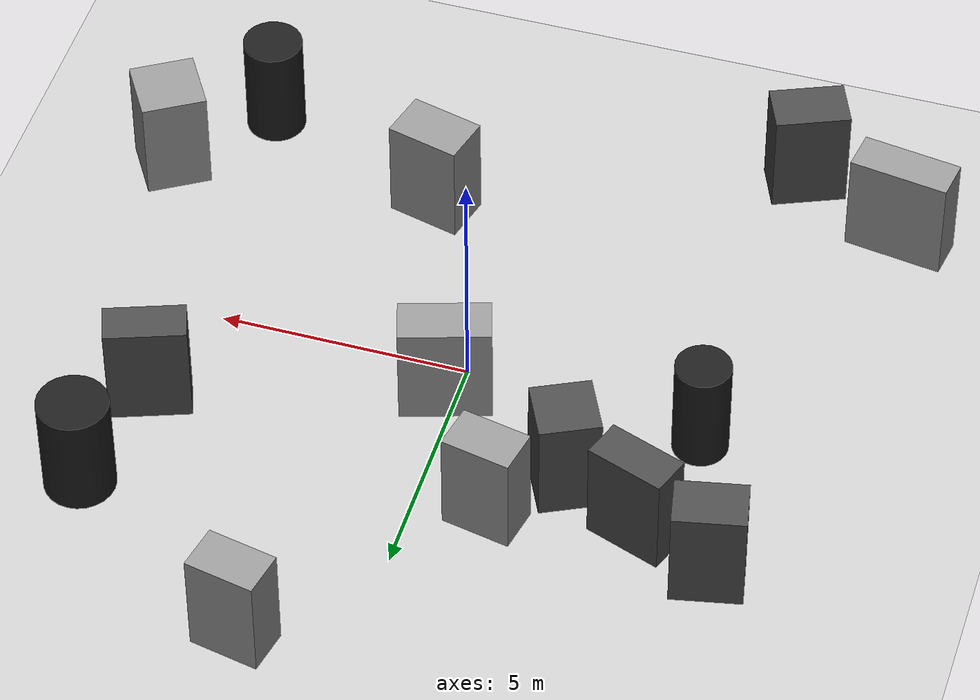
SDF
<sdf version="1.7">
 <world name="dyn_sta_world">
  <light name="sun" type="directional">
   <pose>0 0 10 0 -0 0</pose>
   <diffuse>0.8 0.8 0.8 1</diffuse>
   <specular>0.2 0.2 0.2 1</specular>
   <attenuation>
    <range>1000</range>
    <constant>0.9</constant>
    <linear>0.01</linear>
    <quadratic>0.001</quadratic>
   </attenuation>
   <direction>-0.5 0.1 -0.9</direction>
   <spot><inner_angle>0</inner_angle><outer_angle>0</outer_angle><falloff>0</falloff></spot>
  </light>
  <model name="ground_plane">
   <static>1</static>
   <link name="link">
    <collision name="collision">
     <geometry><plane><normal>0 0 1</normal><size>20 20</size></plane></geometry>
     <surface><friction><ode><mu>100</mu><mu2>50</mu2></ode></friction></surface>
    </collision>
    <visual name="visual">
     <cast_shadows>0</cast_shadows>
     <geometry><plane><normal>0 0 1</normal><size>20 20</size></plane></geometry>
     <material>
      <script><uri>file://media/materials/scripts/gazebo.material</uri><name>Gazebo/Grey</name></script>
     </material>
    </visual>
   </link>
  </model>
  <gravity>0 0 -9.8</gravity>
  <magnetic_field>6e-06 2.3e-05 -4.2e-05</magnetic_field>
  <atmosphere type="adiabatic"/>
  <physics name="default_physics" default="0" type="ode">
   <max_step_size>0.001</max_step_size>
   <real_time_factor>1</real_time_factor>
   <real_time_update_rate>1000</real_time_update_rate>
  </physics>
  <scene><ambient>0.4 0.4 0.4 1</ambient><background>0.7 0.7 0.7 1</background><shadows>1</shadows></scene>
  <spherical_coordinates>
   <surface_model>EARTH_WGS84</surface_model>
   <latitude_deg>0</latitude_deg>
   <longitude_deg>0</longitude_deg>
   <elevation>0</elevation>
   <heading_deg>0</heading_deg>
  </spherical_coordinates>
  <model name="obs_dense_0">
   <static>1</static>
   <pose>-5.8 3.8 0 0 -0 0.2</pose>
   <link name="link">
    <collision name="collision">
     <geometry><box><size>1.4 1 2.2</size></box></geometry>
     <pose>0 0 1.1 0 -0 0</pose>
    </collision>
    <visual name="visual">
     <geometry><box><size>1.4 1 2.2</size></box></geometry>
     <pose>0 0 1.1 0 -0 0</pose>
     <material>
      <script><uri>file://media/materials/scripts/gazebo.material</uri><name>Gazebo/DarkGrey</name></script>
     </material>
    </visual>
   </link>
  </model>
  <model name="obs_dense_1">
   <static>1</static>
   <pose>-4.2 3.1 0 0 0 -0.35</pose>
   <link name="link">
    <collision name="collision">
     <geometry><box><size>1.6 0.8 2.2</size></box></geometry>
     <pose>0 0 1.1 0 -0 0</pose>
    </collision>
    <visual name="visual">
     <geometry><box><size>1.6 0.8 2.2</size></box></geometry>
     <pose>0 0 1.1 0 -0 0</pose>
     <material>
      <script><uri>file://media/materials/scripts/gazebo.material</uri><name>Gazebo/DarkGrey</name></script>
     </material>
    </visual>
   </link>
  </model>
  <model name="obs_dense_2">
   <static>1</static>
   <pose>-4.8 0.544943 0 0 -0 0</pose>
   <link name="link">
    <collision name="collision">
     <geometry><cylinder><radius>0.55</radius><length>2.2</length></cylinder></geometry>
     <pose>0 0 1.1 0 -0 0</pose>
    </collision>
    <visual name="visual">
     <geometry><cylinder><radius>0.55</radius><length>2.2</length></cylinder></geometry>
     <pose>0 0 1.1 0 -0 0</pose>
     <material>
      <script><uri>file://media/materials/scripts/gazebo.material</uri><name>Gazebo/Black</name></script>
     </material>
    </visual>
   </link>
  </model>
  <model name="obs_dense_3">
   <static>1</static>
   <pose>-2.6124 2.29062 -0 0 -0 0.45</pose>
   <link name="link">
    <collision name="collision">
     <geometry><box><size>1.2 1.2 2.2</size></box></geometry>
     <pose>0 0 1.1 0 -0 0</pose>
    </collision>
    <visual name="visual">
     <geometry><box><size>1.2 1.2 2.2</size></box></geometry>
     <pose>0 0 1.1 0 -0 0</pose>
     <material>
      <script><uri>file://media/materials/scripts/gazebo.material</uri><name>Gazebo/DarkGrey</name></script>
     </material>
    </visual>
   </link>
  </model>
  <model name="obs_mid_0">
   <static>1</static>
   <pose>0.2 0.8 0 0 -0 0.3</pose>
   <link name="link">
    <collision name="collision">
     <geometry><box><size>1.8 0.9 2.2</size></box></geometry>
     <pose>0 0 1.1 0 -0 0</pose>
    </collision>
    <visual name="visual">
     <geometry><box><size>1.8 0.9 2.2</size></box></geometry>
     <pose>0 0 1.1 0 -0 0</pose>
     <material>
      <script><uri>file://media/materials/scripts/gazebo.material</uri><name>Gazebo/Grey</name></script>
     </material>
    </visual>
   </link>
  </model>
  <model name="obs_mid_1">
   <static>1</static>
   <pose>1.94368 -4.17034 0 0 0 -0.25</pose>
   <link name="link">
    <collision name="collision">
     <geometry><box><size>1.5 1 2.2</size></box></geometry>
     <pose>0 0 1.1 0 -0 0</pose>
    </collision>
    <visual name="visual">
     <geometry><box><size>1.5 1 2.2</size></box></geometry>
     <pose>0 0 1.1 0 -0 0</pose>
     <material>
      <script><uri>file://media/materials/scripts/gazebo.material</uri><name>Gazebo/Grey</name></script>
     </material>
    </visual>
   </link>
  </model>
  <model name="obs_mid_2">
   <static>1</static>
   <pose>-1.42383 3.46907 -0 0 0 -0.2</pose>
   <link name="link">
    <collision name="collision">
     <geometry><box><size>1.4 0.9 2.2</size></box></geometry>
     <pose>0 0 1.1 0 -0 0</pose>
    </collision>
    <visual name="visual">
     <geometry><box><size>1.4 0.9 2.2</size></box></geometry>
     <pose>0 0 1.1 0 -0 0</pose>
     <material>
      <script><uri>file://media/materials/scripts/gazebo.material</uri><name>Gazebo/Grey</name></script>
     </material>
    </visual>
   </link>
  </model>
  <model name="obs_mid_3">
   <static>1</static>
   <pose>5.62133 2.46484 0 0 -0 0.35</pose>
   <link name="link">
    <collision name="collision">
     <geometry><box><size>1.6 0.8 2.2</size></box></geometry>
     <pose>0 0 1.1 0 -0 0</pose>
    </collision>
    <visual name="visual">
     <geometry><box><size>1.6 0.8 2.2</size></box></geometry>
     <pose>0 0 1.1 0 -0 0</pose>
     <material>
      <script><uri>file://media/materials/scripts/gazebo.material</uri><name>Gazebo/DarkGrey</name></script>
     </material>
    </visual>
   </link>
  </model>
  <model name="obs_sparse_0">
   <static>1</static>
   <pose>6.2 4.8 0 0 -0 0</pose>
   <link name="link">
    <collision name="collision">
     <geometry><cylinder><radius>0.7</radius><length>2.2</length></cylinder></geometry>
     <pose>0 0 1.1 0 -0 0</pose>
    </collision>
    <visual name="visual">
     <geometry><cylinder><radius>0.7</radius><length>2.2</length></cylinder></geometry>
     <pose>0 0 1.1 0 -0 0</pose>
     <material>
      <script><uri>file://media/materials/scripts/gazebo.material</uri><name>Gazebo/Black</name></script>
     </material>
    </visual>
   </link>
  </model>
  <model name="obs_sparse_0b">
   <static>1</static>
   <pose>2.12186 7.60506 0 0 0 -0.2</pose>
   <link name="link">
    <collision name="collision">
     <geometry><box><size>1.4 0.9 2.2</size></box></geometry>
     <pose>0 0 1.1 0 -0 0</pose>
    </collision>
    <visual name="visual">
     <geometry><box><size>1.4 0.9 2.2</size></box></geometry>
     <pose>0 0 1.1 0 -0 0</pose>
     <material>
      <script><uri>file://media/materials/scripts/gazebo.material</uri><name>Gazebo/Grey</name></script>
     </material>
    </visual>
   </link>
  </model>
  <model name="obs_sparse_1">
   <static>1</static>
   <pose>7.4 -3.8 0 0 -0 0.55</pose>
   <link name="link">
    <collision name="collision">
     <geometry><box><size>1.3 1.3 2.2</size></box></geometry>
     <pose>0 0 1.1 0 -0 0</pose>
    </collision>
    <visual name="visual">
     <geometry><box><size>1.3 1.3 2.2</size></box></geometry>
     <pose>0 0 1.1 0 -0 0</pose>
     <material>
      <script><uri>file://media/materials/scripts/gazebo.material</uri><name>Gazebo/Grey</name></script>
     </material>
    </visual>
   </link>
  </model>
  <model name="obs_sparse_1b">
   <static>1</static>
   <pose>5.8 -5.6 0 0 -0 0.2</pose>
   <link name="link">
    <collision name="collision">
     <geometry><cylinder><radius>0.6</radius><length>2.2</length></cylinder></geometry>
     <pose>0 0 1.1 0 -0 0</pose>
    </collision>
    <visual name="visual">
     <geometry><cylinder><radius>0.6</radius><length>2.2</length></cylinder></geometry>
     <pose>0 0 1.1 0 -0 0</pose>
     <material>
      <script><uri>file://media/materials/scripts/gazebo.material</uri><name>Gazebo/Black</name></script>
     </material>
    </visual>
   </link>
  </model>
  <model name="obs_sparse_2">
   <static>1</static>
   <pose>-7.2 -5.8 0 0 0 -0.15</pose>
   <link name="link">
    <collision name="collision">
     <geometry><box><size>2 0.8 2.2</size></box></geometry>
     <pose>0 0 1.1 0 -0 0</pose>
    </collision>
    <visual name="visual">
     <geometry><box><size>2 0.8 2.2</size></box></geometry>
     <pose>0 0 1.1 0 -0 0</pose>
     <material>
      <script><uri>file://media/materials/scripts/gazebo.material</uri><name>Gazebo/Grey</name></script>
     </material>
    </visual>
   </link>
  </model>
  <model name="obs_sparse_2b">
   <static>1</static>
   <pose>-5 -6.9 0 0 -0 0.4</pose>
   <link name="link">
    <collision name="collision">
     <geometry><box><size>1.5 1 2.2</size></box></geometry>
     <pose>0 0 1.1 0 -0 0</pose>
    </collision>
    <visual name="visual">
     <geometry><box><size>1.5 1 2.2</size></box></geometry>
     <pose>0 0 1.1 0 -0 0</pose>
     <material>
      <script><uri>file://media/materials/scripts/gazebo.material</uri><name>Gazebo/DarkGrey</name></script>
     </material>
    </visual>
   </link>
  </model>
 </world>
</sdf>
